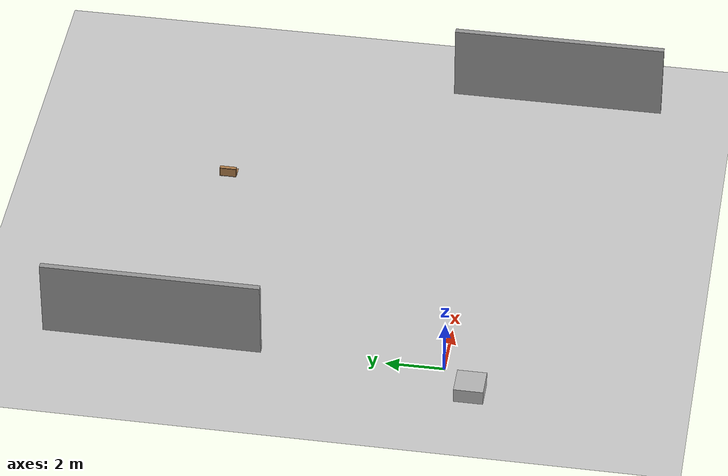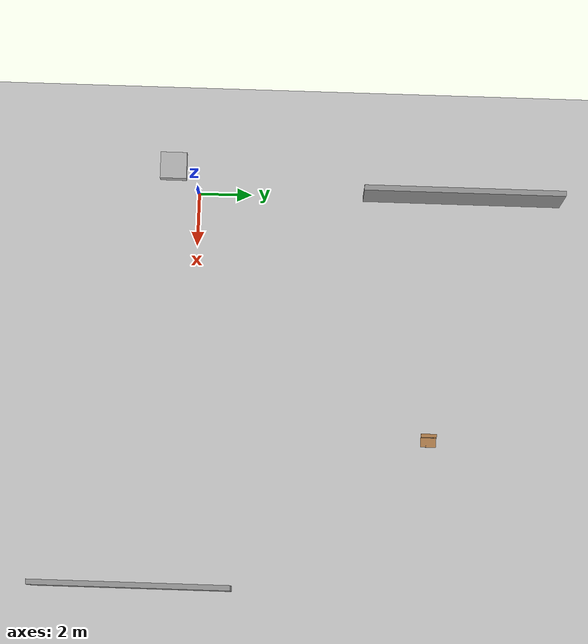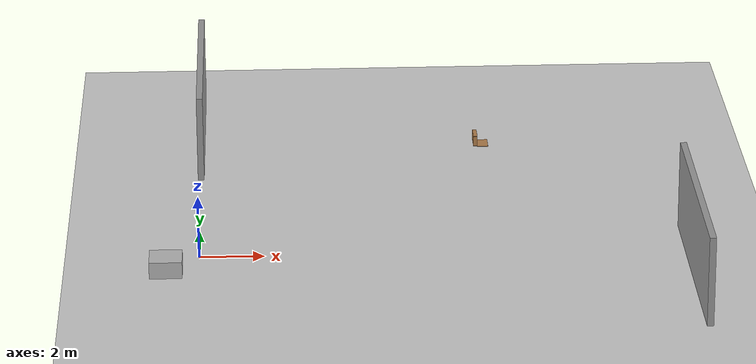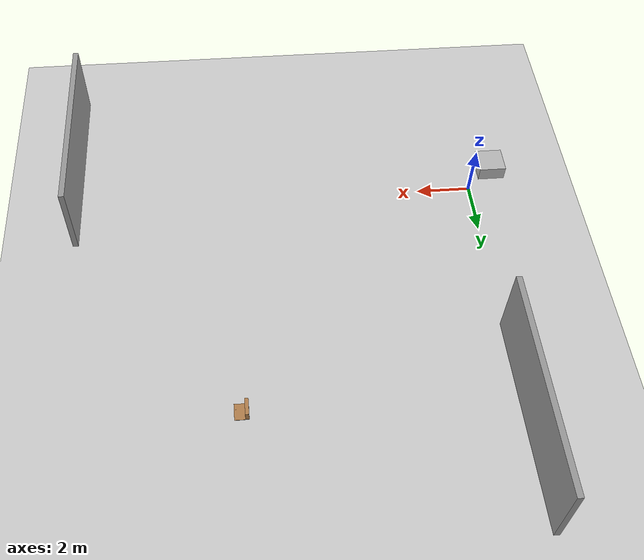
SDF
<sdf version="1.4">
 <world name="default">
  <light type="point" name="additional_light">
   <intensity>2</intensity>
   <diffuse>0 0.8 0.5 1</diffuse>
   <pose>2 2 2 0 0 0</pose>
  </light>
  <include><uri>model://ground_plane</uri></include>
  <include><uri>model://sun</uri></include>
  <include><uri>model://wooden_case</uri><pose>9 9 0 0 0 0</pose></include>
  <include><uri>model://grey_wall</uri><pose>0 10 0 0 0 1.57</pose><name>wall_1</name></include>
  <include><uri>model://grey_wall</uri><pose>15 -2 0 0 0 1.57</pose><name>wall_2</name></include>
  <model name="box">
   <pose>-1 -1 0 0 0 0</pose>
   <link name="body">
    <collision name="collision1"><geometry><box><size>1 1 1</size></box></geometry></collision>
    <visual name="visual1"><geometry><box><size>1 1 1</size></box></geometry></visual>
   </link>
  </model>
 </world>
</sdf>

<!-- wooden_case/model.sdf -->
<sdf version="1.5">
  <model name="wooden_case">
    <link name="base">

      <pose>0 0 0.024  0 0 0</pose>
      <inertial>
        <pose>-0.02218446808213116 0.0 0.17159249678128843  0 0 0</pose>
        <mass>3.9626366887499986</mass>
        <inertia>
          <ixx>0.2135364168029657</ixx>
          <ixy>0.0</ixy>
          <ixz>0.0007793770806417083</ixz>
          <iyy>0.07089428398599372</iyy>
          <iyz>0.0</iyz>
          <izz>0.15460392299497075</izz>
        </inertia>
      </inertial>

      <collision name="collision_back">
        <pose>-0.053975 0 0.17779999999999999  0 0 0</pose>
        <geometry>
          <box>
            <size>0.019049999999999997 0.5460999999999999 0.3175</size>
          </box>
        </geometry>
        <surface>
          <contact>

            <poissons_ratio>0.347</poissons_ratio>
            <elastic_modulus>8.8e+09</elastic_modulus>
            <ode>
              <kp>100000</kp>
              <kd>100</kd>
              <max_vel>100.0</max_vel>
              <min_depth>0.001</min_depth>
            </ode>
          </contact>
          <friction>
            <torsional>
              <coefficient>1.0</coefficient>
              <use_patch_radius>0</use_patch_radius>
              <surface_radius>0.01</surface_radius>
            </torsional>
          </friction>
        </surface>
      </collision>
      <visual name="visual_back">
        <pose>-0.053975 0 0.17779999999999999  0 0 0</pose>
        <geometry>
          <box>
            <size>0.019049999999999997 0.5460999999999999 0.3175</size>
          </box>
        </geometry>
        <material>
          <script>
            <uri>model://media/materials/scripts/gazebo.material</uri>
            <name>Gazebo/Wood</name>
          </script>
        </material>
      </visual>

      <collision name="collision_bottom">
        <pose>0 0 0.009524999999999999  0 0 0</pose>
        <geometry>
          <box>
            <size>0.127 0.5841999999999999 0.019049999999999997</size>
          </box>
        </geometry>
        <surface>
          <contact>

            <poissons_ratio>0.347</poissons_ratio>
            <elastic_modulus>8.8e+09</elastic_modulus>
            <ode>
              <kp>100000</kp>
              <kd>100</kd>
              <max_vel>100.0</max_vel>
              <min_depth>0.001</min_depth>
            </ode>
          </contact>
          <friction>
            <torsional>
              <coefficient>1.0</coefficient>
              <use_patch_radius>0</use_patch_radius>
              <surface_radius>0.01</surface_radius>
            </torsional>
          </friction>
        </surface>
      </collision>
      <visual name="visual_bottom">
        <pose>0 0 0.009524999999999999  0 0 0</pose>
        <geometry>
          <box>
            <size>0.127 0.5841999999999999 0.019049999999999997</size>
          </box>
        </geometry>
        <material>
          <script>
            <uri>model://media/materials/scripts/gazebo.material</uri>
            <name>Gazebo/Wood</name>
          </script>
        </material>
      </visual>

      <collision name="collision_top">
        <pose>0 0 0.34607499999999997  0 0 0</pose>
        <geometry>
          <box>
            <size>0.127 0.5841999999999999 0.019049999999999997</size>
          </box>
        </geometry>
        <surface>
          <contact>

            <poissons_ratio>0.347</poissons_ratio>
            <elastic_modulus>8.8e+09</elastic_modulus>
            <ode>
              <kp>100000</kp>
              <kd>100</kd>
              <max_vel>100.0</max_vel>
              <min_depth>0.001</min_depth>
            </ode>
          </contact>
          <friction>
            <torsional>
              <coefficient>1.0</coefficient>
              <use_patch_radius>0</use_patch_radius>
              <surface_radius>0.01</surface_radius>
            </torsional>
          </friction>
        </surface>
      </collision>
      <visual name="visual_top">
        <pose>0 0 0.34607499999999997  0 0 0</pose>
        <geometry>
          <box>
            <size>0.127 0.5841999999999999 0.019049999999999997</size>
          </box>
        </geometry>
        <material>
          <script>
            <uri>model://media/materials/scripts/gazebo.material</uri>
            <name>Gazebo/Wood</name>
          </script>
        </material>
      </visual>

      <collision name="collision_left">
        <pose>0 -0.28257499999999997 0.17779999999999999  0 0 0</pose>
        <geometry>
          <box>
            <size>0.127 0.019049999999999997 0.3175</size>
          </box>
        </geometry>
        <surface>
          <contact>

            <poissons_ratio>0.347</poissons_ratio>
            <elastic_modulus>8.8e+09</elastic_modulus>
            <ode>
              <kp>100000</kp>
              <kd>100</kd>
              <max_vel>100.0</max_vel>
              <min_depth>0.001</min_depth>
            </ode>
          </contact>
          <friction>
            <torsional>
              <coefficient>1.0</coefficient>
              <use_patch_radius>0</use_patch_radius>
              <surface_radius>0.01</surface_radius>
            </torsional>
          </friction>
        </surface>
      </collision>
      <visual name="visual_left">
        <pose>0 -0.28257499999999997 0.17779999999999999  0 0 0</pose>
        <geometry>
          <box>
            <size>0.127 0.019049999999999997 0.3175</size>
          </box>
        </geometry>
        <material>
          <script>
            <uri>model://media/materials/scripts/gazebo.material</uri>
            <name>Gazebo/Wood</name>
          </script>
        </material>
      </visual>

      <collision name="collision_right">
        <pose>0 0.28257499999999997 0.17779999999999999  0 0 0</pose>
        <geometry>
          <box>
            <size>0.127 0.019049999999999997 0.3175</size>
          </box>
        </geometry>
        <surface>
          <contact>

            <poissons_ratio>0.347</poissons_ratio>
            <elastic_modulus>8.8e+09</elastic_modulus>
            <ode>
              <kp>100000</kp>
              <kd>100</kd>
              <max_vel>100.0</max_vel>
              <min_depth>0.001</min_depth>
            </ode>
          </contact>
          <friction>
            <torsional>
              <coefficient>1.0</coefficient>
              <use_patch_radius>0</use_patch_radius>
              <surface_radius>0.01</surface_radius>
            </torsional>
          </friction>
        </surface>
      </collision>
      <visual name="visual_right">
        <pose>0 0.28257499999999997 0.17779999999999999  0 0 0</pose>
        <geometry>
          <box>
            <size>0.127 0.019049999999999997 0.3175</size>
          </box>
        </geometry>
        <material>
          <script>
            <uri>model://media/materials/scripts/gazebo.material</uri>
            <name>Gazebo/Wood</name>
          </script>
        </material>
      </visual>

      <collision name="collision_block_left">
        <pose>0.009500000000000001 -0.21509999999999996 -0.012  0 0 0</pose>
        <geometry>
          <box>
            <size>0.108 0.05 0.024</size>
          </box>
        </geometry>
        <surface>
          <contact>

            <poissons_ratio>0.347</poissons_ratio>
            <elastic_modulus>8.8e+09</elastic_modulus>
            <ode>
              <kp>100000</kp>
              <kd>100</kd>
              <max_vel>100.0</max_vel>
              <min_depth>0.001</min_depth>
            </ode>
          </contact>
          <friction>
            <torsional>
              <coefficient>1.0</coefficient>
              <use_patch_radius>0</use_patch_radius>
              <surface_radius>0.01</surface_radius>
            </torsional>
          </friction>
        </surface>
      </collision>
      <visual name="visual_block_left">
        <pose>0.009500000000000001 -0.21509999999999996 -0.012  0 0 0</pose>
        <geometry>
          <box>
            <size>0.108 0.05 0.024</size>
          </box>
        </geometry>
        <material>
          <script>
            <uri>model://media/materials/scripts/gazebo.material</uri>
            <name>Gazebo/Wood</name>
          </script>
        </material>
      </visual>

      <collision name="collision_block_right">
        <pose>0.009500000000000001 0.21509999999999996 -0.012  0 0 0</pose>
        <geometry>
          <box>
            <size>0.108 0.05 0.024</size>
          </box>
        </geometry>
        <surface>
          <contact>

            <poissons_ratio>0.347</poissons_ratio>
            <elastic_modulus>8.8e+09</elastic_modulus>
            <ode>
              <kp>100000</kp>
              <kd>100</kd>
              <max_vel>100.0</max_vel>
              <min_depth>0.001</min_depth>
            </ode>
          </contact>
          <friction>
            <torsional>
              <coefficient>1.0</coefficient>
              <use_patch_radius>0</use_patch_radius>
              <surface_radius>0.01</surface_radius>
            </torsional>
          </friction>
        </surface>
      </collision>
      <visual name="visual_block_right">
        <pose>0.009500000000000001 0.21509999999999996 -0.012  0 0 0</pose>
        <geometry>
          <box>
            <size>0.108 0.05 0.024</size>
          </box>
        </geometry>
        <material>
          <script>
            <uri>model://media/materials/scripts/gazebo.material</uri>
            <name>Gazebo/Wood</name>
          </script>
        </material>
      </visual>

    </link>

    <link name="lid">

      <pose>0.24377499999999996 0 0.009524999999999999  0 0 0</pose>
      <inertial>
        <mass>1.9787379779999992</mass>
        <inertia>
          <ixx>0.05633673842708405</ixx>
          <ixy>0</ixy>
          <ixz>0</ixz>
          <iyy>0.020911016446734258</iyy>
          <iyz>0</iyz>
          <izz>0.07712807338064145</izz>
        </inertia>
      </inertial>
      <collision name="collision">
        <geometry>
          <box>
            <size>0.35559999999999997 0.5841999999999999 0.019049999999999997</size>
          </box>
        </geometry>
        <surface>
          <contact>

            <poissons_ratio>0.347</poissons_ratio>
            <elastic_modulus>8.8e+09</elastic_modulus>
            <ode>
              <kp>100000</kp>
              <kd>100</kd>
              <max_vel>100.0</max_vel>
              <min_depth>0.001</min_depth>
            </ode>
          </contact>
          <friction>
            <torsional>
              <coefficient>1.0</coefficient>
              <use_patch_radius>0</use_patch_radius>
              <surface_radius>0.01</surface_radius>
            </torsional>
          </friction>
        </surface>
      </collision>
      <visual name="visual">
        <geometry>
          <box>
            <size>0.35559999999999997 0.5841999999999999 0.019049999999999997</size>
          </box>
        </geometry>
        <material>
          <script>
            <uri>model://media/materials/scripts/gazebo.material</uri>
            <name>Gazebo/Wood</name>
          </script>
        </material>
      </visual>

      <visual name="tee_nut_1">
        <pose>0.122 -0.216 0.0  0 0 0</pose>
        <geometry>
          <cylinder>
            <radius>0.00635</radius>
            <length>0.019240499999999997</length>
          </cylinder>
        </geometry>
        <material>
          <script>
            <uri>model://media/materials/scripts/gazebo.material</uri>
            <name>Gazebo/Grey</name>
          </script>
        </material>
      </visual>

      <visual name="tee_nut_2">
        <pose>0.122 -0.088 0.0  0 0 0</pose>
        <geometry>
          <cylinder>
            <radius>0.00635</radius>
            <length>0.019240499999999997</length>
          </cylinder>
        </geometry>
        <material>
          <script>
            <uri>model://media/materials/scripts/gazebo.material</uri>
            <name>Gazebo/Grey</name>
          </script>
        </material>
      </visual>

      <visual name="tee_nut_3">
        <pose>0.122 0.088 0.0  0 0 0</pose>
        <geometry>
          <cylinder>
            <radius>0.00635</radius>
            <length>0.019240499999999997</length>
          </cylinder>
        </geometry>
        <material>
          <script>
            <uri>model://media/materials/scripts/gazebo.material</uri>
            <name>Gazebo/Grey</name>
          </script>
        </material>
      </visual>

      <visual name="tee_nut_4">
        <pose>0.122 0.216 0.0  0 0 0</pose>
        <geometry>
          <cylinder>
            <radius>0.00635</radius>
            <length>0.019240499999999997</length>
          </cylinder>
        </geometry>
        <material>
          <script>
            <uri>model://media/materials/scripts/gazebo.material</uri>
            <name>Gazebo/Grey</name>
          </script>
        </material>
      </visual>

    </link>

    <joint name="lid_hinge" type="revolute">
      <pose>-0.17779999999999999 0 0.019049999999999997  0 0 0</pose>
      <parent>base</parent>
      <child>lid</child>
      <axis>
        <xyz>0 1 0</xyz>
        <limit>
          <upper>0.5235987755982988</upper>
          <lower>-1.5707963267948966</lower>
        </limit>
      </axis>
    </joint>

  </model>
</sdf>

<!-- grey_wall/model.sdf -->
<sdf version="1.5">
  <model name="grey_wall">
    <static>true</static>
    <link name="link">
      <pose>0 0 1.4 0 0 0</pose>
      <collision name="collision">
        <geometry>
          <box>
            <size>7.5 0.2 2.8</size>
          </box>
        </geometry>
      </collision>
      <visual name="visual">
        <cast_shadows>false</cast_shadows>
        <geometry>
          <box>
            <size>7.5 0.2 2.8</size>
          </box>
        </geometry>
        <material>
          <script>
            <uri>model://../model_source/models/grey_wall/materials/scripts</uri>
            <uri>model://../model_source/models/grey_wall/materials/textures</uri>
            <name>vrc/grey_wall</name>
          </script>
        </material>
      </visual>
    </link>
  </model>
</sdf>
